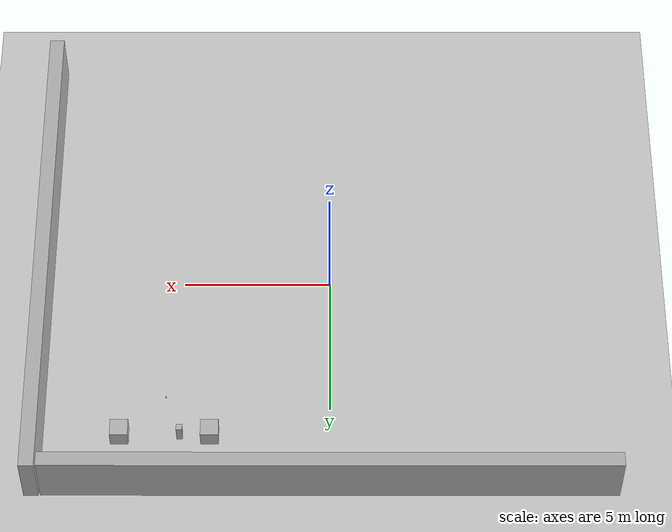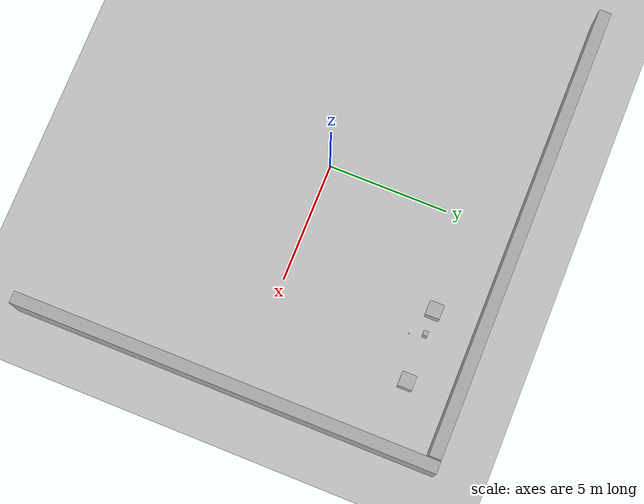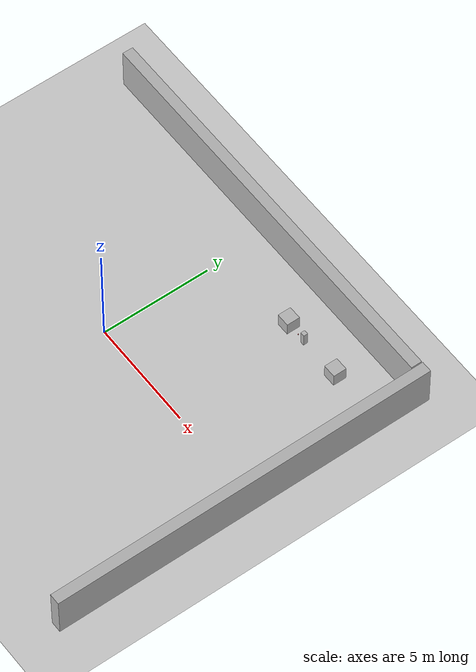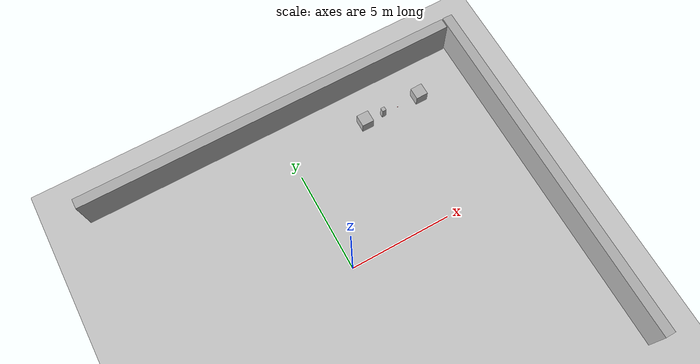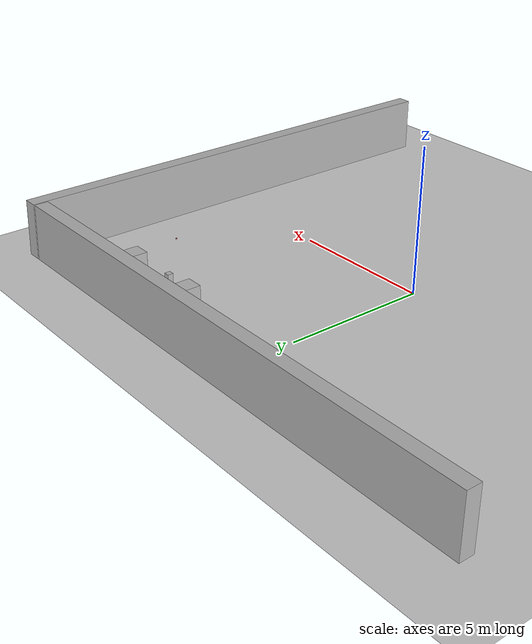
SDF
<sdf version="1.6">
 <world name="empty">
  <physics name="1ms" type="ode">
   <max_step_size>0.001</max_step_size>
   <real_time_factor>1</real_time_factor>
   <real_time_update_rate>1000</real_time_update_rate>
  </physics>
  <plugin name="gz::sim::systems::Physics" filename="gz-sim-physics-system"/>
  <plugin name="gz::sim::systems::UserCommands" filename="gz-sim-user-commands-system"/>
  <plugin name="gz::sim::systems::SceneBroadcaster" filename="gz-sim-scene-broadcaster-system"/>
  <plugin name="gz::sim::systems::Contact" filename="gz-sim-contact-system"/>
  <plugin name="gz::sim::systems::Sensors" filename="gz-sim-sensors-system">
   <render_engine>ogre2</render_engine>
  </plugin>
  <plugin name="gz::sim::systems::Imu" filename="gz-sim-imu-system"/>
  <plugin filename="gz-sim-navsat-system" name="gz::sim::systems::NavSat"/>
  <spherical_coordinates>
   <surface_model>EARTH_WGS84</surface_model>
   <world_frame_orientation>ENU</world_frame_orientation>
   <latitude_deg>47.478950</latitude_deg>
   <longitude_deg>19.057785</longitude_deg>
   <elevation>0</elevation>
   <heading_deg>0</heading_deg>
  </spherical_coordinates>
  <light name="sun" type="directional">
   <pose>0 0 10 0 -0 0</pose>
   <diffuse>0.8 0.8 0.8 1</diffuse>
   <specular>0.2 0.2 0.2 1</specular>
   <attenuation>
    <range>1000</range>
    <constant>0.9</constant>
    <linear>0.01</linear>
    <quadratic>0.001</quadratic>
   </attenuation>
   <direction>-0.5 0.1 -0.9</direction>
  </light>
  <model name="object1">
   <pose>5.4 5.4 1.5 0 0 0</pose>
   <link name="link">
    <inertial>
     <mass>0.5</mass>
     <inertia>
      <ixx>0.0005</ixx>
      <iyy>0.0005</iyy>
      <izz>0.0005</izz>
      <ixy>0.0</ixy>
      <ixz>0.0</ixz>
      <iyz>0.0</iyz>
     </inertia>
    </inertial>
    <collision name="collision"><geometry><box><size>0.03 0.03 0.03</size></box></geometry></collision>
    <visual name="visual">
     <geometry><box><size>0.03 0.03 0.03</size></box></geometry>
     <material>
      <ambient>0.8 0.2 0.2 1</ambient>
      <diffuse>0.8 0.2 0.2 1</diffuse>
      <specular>0.8 0.2 0.2 1</specular>
     </material>
    </visual>
   </link>
   <plugin filename="gz-sim-odometry-publisher-system" name="gz::sim::systems::OdometryPublisher">
    <dimensions>3</dimensions>
   </plugin>
  </model>
  <model name="ground_plane">
   <static>1</static>
   <link name="link">
    <collision name="collision">
     <geometry><plane><normal>0 0 1</normal><size>100 100</size></plane></geometry>
     <surface><friction><ode><mu>100</mu><mu2>50</mu2></ode></friction></surface>
    </collision>
    <visual name="visual">
     <cast_shadows>0</cast_shadows>
     <geometry><plane><normal>0 0 1</normal><size>100 100</size></plane></geometry>
     <material>
      <script><uri>file://media/materials/scripts/gazebo.material</uri><name>Gazebo/Grey</name></script>
     </material>
    </visual>
   </link>
  </model>
  <gravity>0 0 -9.8</gravity>
  <magnetic_field>6e-06 2.3e-05 -4.2e-05</magnetic_field>
  <atmosphere type="adiabatic"/>
  <physics name="default_physics" default="0" type="ode">
   <max_step_size>0.001</max_step_size>
   <real_time_factor>1</real_time_factor>
   <real_time_update_rate>1000</real_time_update_rate>
  </physics>
  <scene><ambient>0.4 0.4 0.4 1</ambient><background>0.7 0.7 0.7 1</background><shadows>1</shadows></scene>
  <audio><device>default</device></audio>
  <spherical_coordinates>
   <surface_model>EARTH_WGS84</surface_model>
   <latitude_deg>0</latitude_deg>
   <longitude_deg>0</longitude_deg>
   <elevation>0</elevation>
   <heading_deg>0</heading_deg>
  </spherical_coordinates>
  <model name="wall_side">
   <pose>9.8 -0.5 1 6.2287739151293738e-22 9.3279666454713669e-22 -3.6315533669320137e-22</pose>
   <link name="box_link">
    <inertial>
     <inertia><ixx>0.16666</ixx><ixy>0</ixy><ixz>0</ixz><iyy>0.16666</iyy><iyz>0</iyz><izz>0.16666</izz></inertia>
     <mass>1</mass>
    </inertial>
    <collision name="box_collision"><geometry><box><size>0.5 17.5 2</size></box></geometry></collision>
    <visual name="box_visual">
     <geometry><box><size>0.5 17.5 2</size></box></geometry>
     <material>
      <ambient>0.300000012 0.300000012 0.300000012 1</ambient>
      <diffuse>0.699999988 0.699999988 0.699999988 1</diffuse>
      <specular>1 1 1 1</specular>
     </material>
    </visual>
   </link>
   <static>false</static>
  </model>
  <model name="wall_side2">
   <pose>0 8 1 6.2287739151293738e-22 9.3279666454713669e-22 1.57</pose>
   <link name="box_link">
    <inertial>
     <inertia><ixx>0.16666</ixx><ixy>0</ixy><ixz>0</ixz><iyy>0.16666</iyy><iyz>0</iyz><izz>0.16666</izz></inertia>
     <mass>1</mass>
    </inertial>
    <collision name="box_collision"><geometry><box><size>0.5 19 2</size></box></geometry></collision>
    <visual name="box_visual">
     <geometry><box><size>0.5 19 2</size></box></geometry>
     <material>
      <ambient>0.300000012 0.300000012 0.300000012 1</ambient>
      <diffuse>0.699999988 0.699999988 0.699999988 1</diffuse>
      <specular>1 1 1 1</specular>
     </material>
    </visual>
   </link>
   <static>false</static>
  </model>
  <model name="workcell_bin_clone">
   <static>1</static>
   <link name="link">
    <visual name="visual"><geometry><box><size>0.6 0.6 1.2</size></box></geometry></visual>
    <collision name="center_collision"><geometry><box><size>0.6 0.6 1.2</size></box></geometry></collision>
   </link>
   <pose>4 6 0 0 -0 0</pose>
  </model>
  <model name="workcell_bin_clone_0">
   <static>1</static>
   <link name="link">
    <visual name="visual"><geometry><box><size>0.2 0.2 1.2</size></box></geometry></visual>
    <collision name="center_collision"><geometry><box><size>0.2 0.2 1.2</size></box></geometry></collision>
   </link>
   <pose>5 6 0 0 -0 0</pose>
  </model>
  <model name="workcell_bin_clone_2">
   <static>1</static>
   <link name="link">
    <visual name="visual"><geometry><box><size>0.6 0.6 1.2</size></box></geometry></visual>
    <collision name="center_collision"><geometry><box><size>0.6 0.6 1.2</size></box></geometry></collision>
   </link>
   <pose>7.0 6 0 0 -0 0</pose>
  </model>
 </world>
</sdf>
